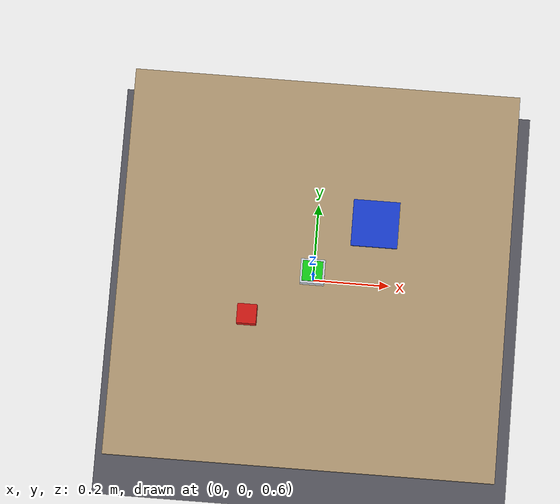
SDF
<?xml version="1.0" ?>
<sdf version="1.10">
  <world name="tabletop">
    <physics name="default" type="ignored">
      <max_step_size>0.001</max_step_size>
      <real_time_factor>1.0</real_time_factor>
    </physics>

    <plugin filename="gz-sim-physics-system" name="gz::sim::systems::Physics"/>
    <plugin filename="gz-sim-user-commands-system" name="gz::sim::systems::UserCommands"/>
    <plugin filename="gz-sim-scene-broadcaster-system" name="gz::sim::systems::SceneBroadcaster"/>
    <plugin filename="gz-sim-sensors-system" name="gz::sim::systems::Sensors">
      <render_engine>ogre2</render_engine>
    </plugin>

    <light type="directional" name="sun">
      <cast_shadows>false</cast_shadows>
      <pose>0 0 4 0 0 0</pose>
      <diffuse>0.9 0.9 0.9 1</diffuse>
      <specular>0.2 0.2 0.2 1</specular>
      <direction>-0.3 0.2 -0.9</direction>
    </light>
    <!-- Second fill light so thresholded colors stay saturated in shadow. -->
    <light type="directional" name="fill">
      <cast_shadows>false</cast_shadows>
      <pose>0 0 4 0 0 0</pose>
      <diffuse>0.4 0.4 0.4 1</diffuse>
      <direction>0.4 -0.3 -0.8</direction>
    </light>

    <model name="ground">
      <static>true</static>
      <link name="link">
        <collision name="c"><geometry><plane><normal>0 0 1</normal></plane></geometry></collision>
        <visual name="v">
          <geometry><plane><normal>0 0 1</normal><size>10 10</size></plane></geometry>
          <material><ambient>0.35 0.35 0.38 1</ambient><diffuse>0.35 0.35 0.38 1</diffuse></material>
        </visual>
      </link>
    </model>

    <!-- Table: 1.0 x 1.0 m top at z = 0.75 -->
    <model name="table">
      <static>true</static>
      <pose>0 0 0.7250 0 0 0</pose>
      <link name="top">
        <collision name="c"><geometry><box><size>1.0 1.0 0.05</size></box></geometry></collision>
        <visual name="v">
          <geometry><box><size>1.0 1.0 0.05</size></box></geometry>
          <material><ambient>0.72 0.62 0.47 1</ambient><diffuse>0.72 0.62 0.47 1</diffuse></material>
        </visual>
      </link>
    </model>

    <!-- Target: red block, 5 cm cube resting on the table -->
    <model name="red_block">
      <pose>-0.16 -0.12 0.775 0 0 0</pose>
      <link name="link">
        <inertial><mass>0.05</mass>
          <inertia><ixx>2.1e-5</ixx><iyy>2.1e-5</iyy><izz>2.1e-5</izz>
                   <ixy>0</ixy><ixz>0</ixz><iyz>0</iyz></inertia>
        </inertial>
        <collision name="c"><geometry><box><size>0.05 0.05 0.05</size></box></geometry></collision>
        <visual name="v">
          <geometry><box><size>0.05 0.05 0.05</size></box></geometry>
          <material><ambient>0.85 0.10 0.08 1</ambient><diffuse>0.85 0.10 0.08 1</diffuse></material>
        </visual>
      </link>
    </model>

    <!-- Goal zone: blue pad, 12 x 12 cm, 1 cm thick -->
    <model name="blue_pad">
      <static>true</static>
      <pose>0.15 0.14 0.755 0 0 0</pose>
      <link name="link">
        <collision name="c"><geometry><box><size>0.12 0.12 0.01</size></box></geometry></collision>
        <visual name="v">
          <geometry><box><size>0.12 0.12 0.01</size></box></geometry>
          <material><ambient>0.10 0.25 0.85 1</ambient><diffuse>0.10 0.25 0.85 1</diffuse></material>
        </visual>
      </link>
    </model>

    <!-- Floating gripper: gravity-free block driven by /model/gripper/cmd_vel.
         Green top face = its marker for the pixel-space servo loop. -->
    <model name="gripper">
      <pose>0.0 -0.02 0.95 0 0 0</pose>
      <link name="body">
        <gravity>false</gravity>
        <inertial><mass>0.2</mass>
          <inertia><ixx>1e-4</ixx><iyy>1e-4</iyy><izz>1e-4</izz>
                   <ixy>0</ixy><ixz>0</ixz><iyz>0</iyz></inertia>
        </inertial>
        <collision name="c"><geometry><box><size>0.06 0.06 0.04</size></box></geometry></collision>
        <visual name="v">
          <geometry><box><size>0.06 0.06 0.04</size></box></geometry>
          <material><ambient>0.85 0.88 0.92 1</ambient><diffuse>0.85 0.88 0.92 1</diffuse></material>
        </visual>
        <visual name="marker">
          <pose>0 0 0.0225 0 0 0</pose>
          <geometry><box><size>0.05 0.05 0.005</size></box></geometry>
          <material><ambient>0.08 0.85 0.10 1</ambient><diffuse>0.08 0.85 0.10 1</diffuse></material>
        </visual>
      </link>
      <plugin filename="gz-sim-velocity-control-system" name="gz::sim::systems::VelocityControl">
        <topic>/model/gripper/cmd_vel</topic>
      </plugin>
      <plugin filename="gz-sim-detachable-joint-system" name="gz::sim::systems::DetachableJoint">
        <parent_link>body</parent_link>
        <child_model>red_block</child_model>
        <child_link>link</child_link>
        <attach_topic>/gripper/attach</attach_topic>
        <detach_topic>/gripper/detach</detach_topic>
        <output_topic>/gripper/attached_state</output_topic>
      </plugin>
      <!-- Proprioception: the gripper knows its own pose, like a real robot
           knows its joint state from encoders. Used ONLY for the z axis. -->
      <plugin filename="gz-sim-odometry-publisher-system" name="gz::sim::systems::OdometryPublisher">
        <odom_topic>/model/gripper/odometry</odom_topic>
        <dimensions>3</dimensions>
      </plugin>
    </model>

    <!-- Overhead camera, 1.15 m above the table top, looking straight down.
         Optical axis is +x in gz, so pitch by +90 deg. -->
    <model name="overhead_camera">
      <static>true</static>
      <pose>0 0 1.9 0 1.5708 1.5708</pose>
      <link name="link">
        <sensor name="camera" type="camera">
          <topic>/camera/image_raw</topic>
          <update_rate>15</update_rate>
          <camera>
            <horizontal_fov>0.9</horizontal_fov>
            <image><width>256</width><height>256</height><format>R8G8B8</format></image>
            <clip><near>0.05</near><far>10</far></clip>
          </camera>
        </sensor>
      </link>
    </model>
  </world>
</sdf>
